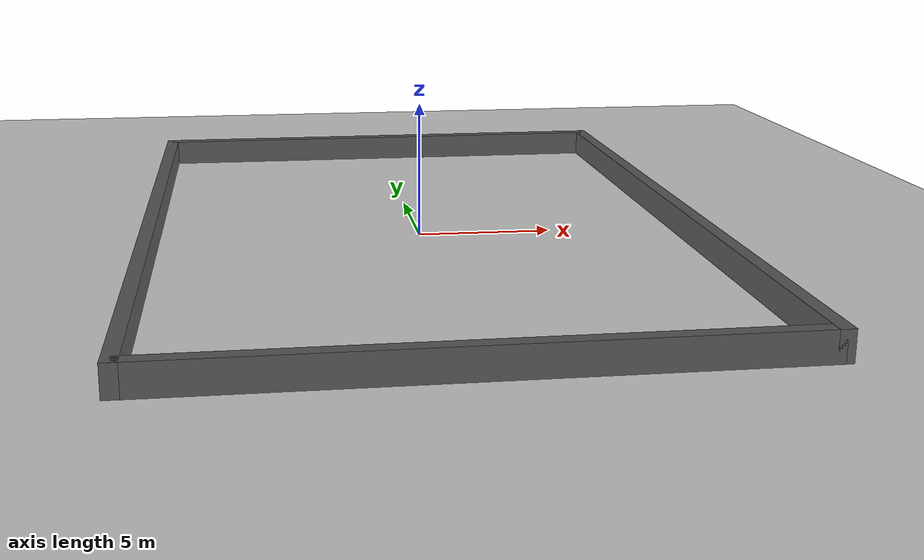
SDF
<sdf version="1.6">
 <world name="husarion_world">
  <physics name="1ms" type="ignored">
   <max_step_size>0.001</max_step_size>
   <real_time_factor>1.0</real_time_factor>
  </physics>
  <light type="directional" name="sun">
   <pose>0 0 10 0 0 0</pose>
   <diffuse>0.8 0.8 0.8 1</diffuse>
   <specular>0.2 0.2 0.2 1</specular>
   <attenuation>
    <range>1000</range>
    <constant>0.9</constant>
    <linear>0.01</linear>
    <quadratic>0.001</quadratic>
   </attenuation>
   <direction>-0.5 0.1 -0.9</direction>
  </light>
  <model name="ground_plane">
   <static>true</static>
   <link name="link">
    <collision name="collision">
     <geometry><plane><normal>0 0 1</normal><size>100 100</size></plane></geometry>
    </collision>
    <visual name="visual">
     <geometry><plane><normal>0 0 1</normal><size>100 100</size></plane></geometry>
     <material>
      <ambient>0.8 0.8 0.8 1</ambient>
      <diffuse>0.8 0.8 0.8 1</diffuse>
      <specular>0.8 0.8 0.8 1</specular>
     </material>
    </visual>
   </link>
  </model>
  <include><uri>model://boundaries_outside</uri><name>boundaries</name></include>
 </world>
</sdf>

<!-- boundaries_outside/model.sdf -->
<sdf version="1.7">
  <model name="boundaries">

    <include>
      <uri>model://wall_big_long</uri>
      <name>boundary_up</name>
	  <pose>10 0 0 0 0 0</pose>
    </include>

    <include>
      <uri>model://wall_big_long</uri>
      <name>boundary_down</name>
      <pose>-10 0 0 0 0 0</pose>
    </include>

    <include>
      <uri>model://wall_big_short</uri>
      <name>boundary_left</name>
	  <pose>0 14.75 0 0 0 1.570796</pose>
    </include>

    <include>
      <uri>model://wall_big_short</uri>
      <name>boundary_right</name>
      <pose>0 -14.75 0 0 0 1.570796</pose>
    </include>

  </model>
</sdf>

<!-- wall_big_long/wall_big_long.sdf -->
<sdf version="1.7">

    <model name='wall'>
        <static>true</static>
        <pose>0 0 0 0 0 0</pose><!--pose relative to the world-->
        <link name='box'>
            <visual name='visual'>
                <geometry>
                    <box>
                        <size>0.5 30.0 2.0</size>
                    </box>
                </geometry>
                <!--let's add color to our link-->
                <material>
                    <ambient>0.35 0.35 0.35 1</ambient>
                    <diffuse>0.35 0.35 0.35 1</diffuse>
                    <specular>0.35 0.35 0.35 1</specular>
                </material>
            </visual>
            <collision name='collision'>
                <geometry>
                    <box>
                        <size>0.5 30.0 2.0</size>
                    </box>
                </geometry>
            </collision>
        </link>
    </model>

</sdf>

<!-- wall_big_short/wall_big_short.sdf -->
<sdf version="1.7">

    <model name='wall'>
        <static>true</static>
        <pose>0 0 0 0 0 0</pose><!--pose relative to the world-->
        <link name='box'>
            <visual name='visual'>
                <geometry>
                    <box>
                        <size>0.5 20.0 2.0</size>
                    </box>
                </geometry>
                <!--let's add color to our link-->
                <material>
                    <ambient>0.35 0.35 0.35 1</ambient>
                    <diffuse>0.35 0.35 0.35 1</diffuse>
                    <specular>0.35 0.35 0.35 1</specular>
                </material>
            </visual>
            <collision name='collision'>
                <geometry>
                    <box>
                        <size>0.5 20.0 2.0</size>
                    </box>
                </geometry>
            </collision>
        </link>
    </model>

</sdf>
